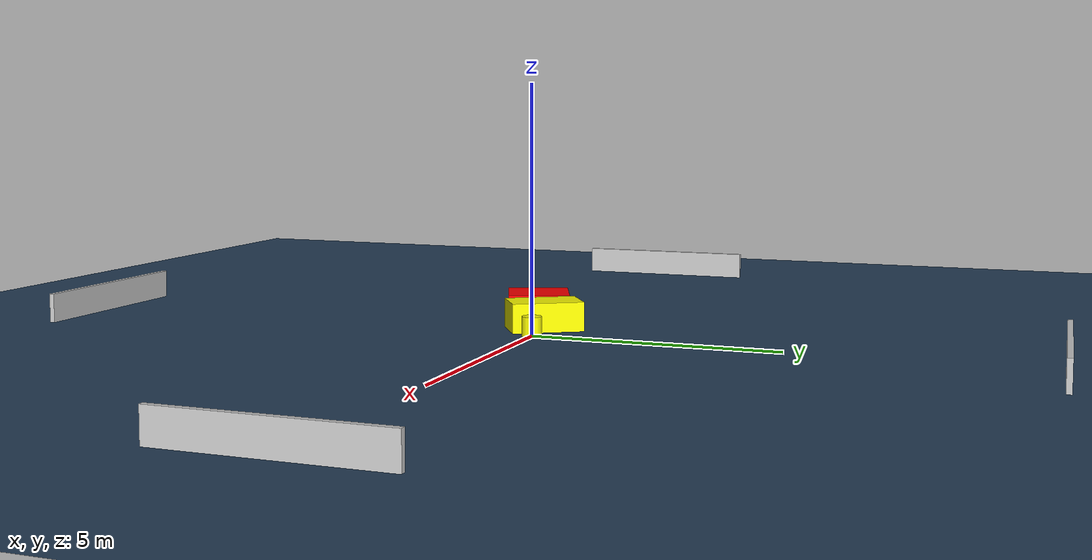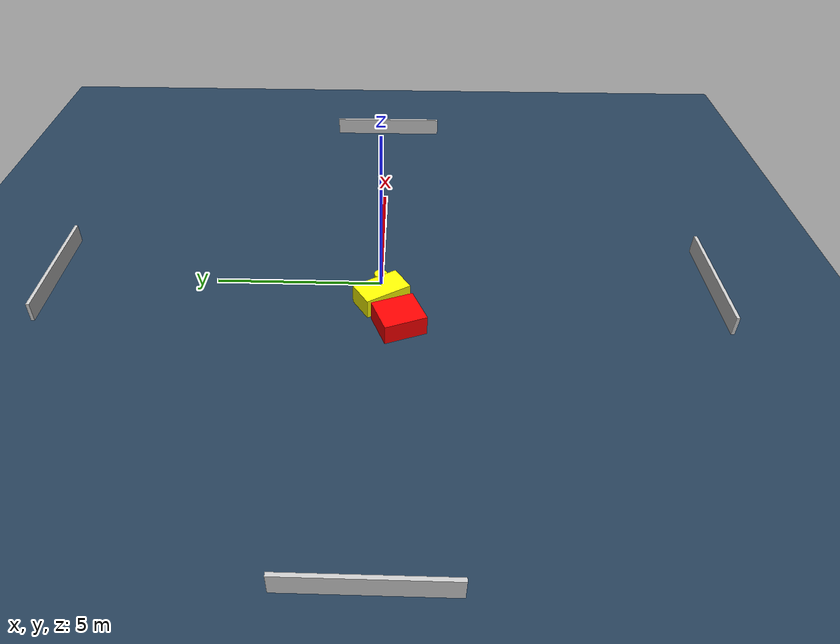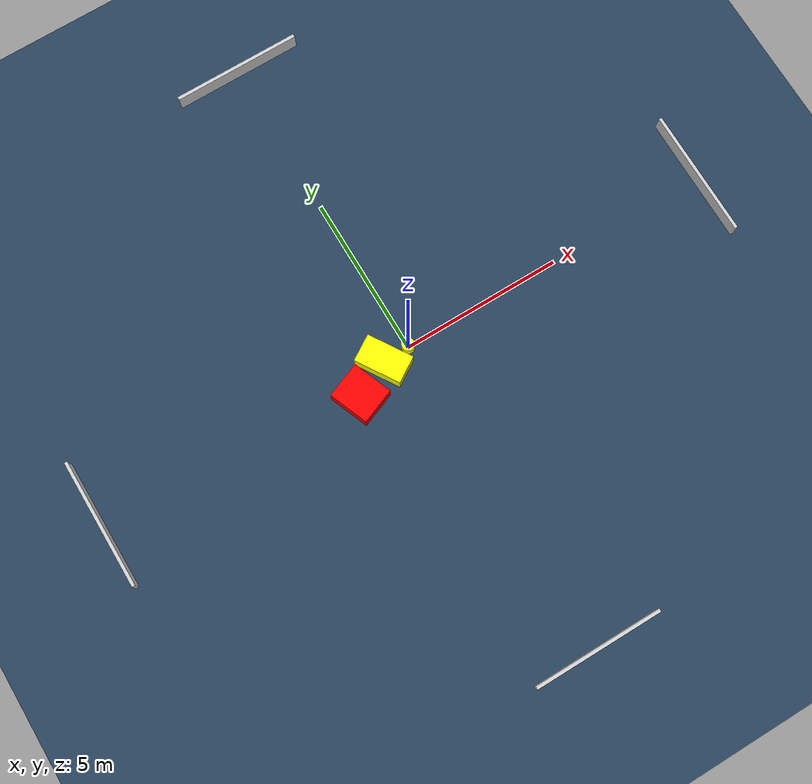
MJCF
<?xml version="1.0" ?>
<mujoco model="generated_environment">
  <option timestep="0.01" integrator="RK4" cone="elliptic"/>
  <default>
    <geom density="1"/>
  </default>
  <asset>
    <texture builtin="gradient" height="3072" name="skybox" rgb1="0.3 0.5 0.7" rgb2="0 0 0" type="skybox" width="512"/>
    <texture builtin="checker" height="300" name="groundplane" rgb1="0.2 0.3 0.4" rgb2="0.1 0.2 0.3" type="2d" width="300"/>
    <material name="groundplane" reflectance="0.2" texrepeat="5 5" texture="groundplane"/>
  </asset>
  <worldbody>
    <light dir="0 0 -1" directional="true" pos="0 0 1.5"/>
    <geom condim="3" friction="0.5 0.005 0.001" material="groundplane" name="floor" pos="0 0 0" size="0 0 0.05" type="plane"/>
    <body name="walls">
      <geom name="wall_1" condim="4" pos="-10.0 0.0 0.3" rgba="0.800000011920929 0.800000011920929 0.800000011920929 1.0" size="0.05 2.0 0.3" type="box"/>
      <geom name="wall_2" condim="4" pos="10.0 0.0 0.3" rgba="0.800000011920929 0.800000011920929 0.800000011920929 1.0" size="0.05 2.0 0.3" type="box"/>
      <geom name="wall_3" condim="4" pos="0.0 -10.0 0.3" rgba="0.800000011920929 0.800000011920929 0.800000011920929 1.0" size="2.0 0.05 0.3" type="box"/>
      <geom name="wall_4" condim="4" pos="0.0 10.0 0.3" rgba="0.800000011920929 0.800000011920929 0.800000011920929 1.0" size="2.0 0.05 0.3" type="box"/>
    </body>
    <body name="robot">
      <joint name="joint_x" type="slide" pos="0 0 0" axis="1 0 0"/>
      <joint name="joint_y" type="slide" pos="0 0 0" axis="0 1 0"/>
      <geom name="robot" type="cylinder" pos="0.0 0.0 0.2" size="0.2 0.2 0.0" mass="5.0" friction="1.0 0.005 0.0001" condim="4" rgba="1.0 1.0 0.0 1.0"/>
    </body>
    <body name="obstacle_1_movable">
      <geom name="obstacle_1_movable" condim="4" pos="-0.8380297664852402 -0.042168354359887104 0.3" euler="0 0 32.26168652491943" friction="0.0 0.005 0.001" rgba="1.0 1.0 0.0 1.0" size="0.43083043457597137 0.7324654668204318 0.3" type="box" mass="0.1"/>
      <joint type="free"/>
    </body>
    <body name="obstacle_2_static">
      <geom name="obstacle_2_static" condim="4" pos="-1.9187870859040697 -0.5623088962958716 0.3" euler="0 0 291.5527162404092" friction="0.0 0.005 0.001" rgba="1.0 0.0 0.0 1.0" size="0.6363828435774384 0.5693306955736966 0.3" type="box"/>
    </body>
  </worldbody>
  <actuator>
    <motor name="actuator_x" joint="joint_x" gear="1" ctrlrange="-1 1"/>
    <motor name="actuator_y" joint="joint_y" gear="1" ctrlrange="-1 1"/>
  </actuator>
</mujoco>
